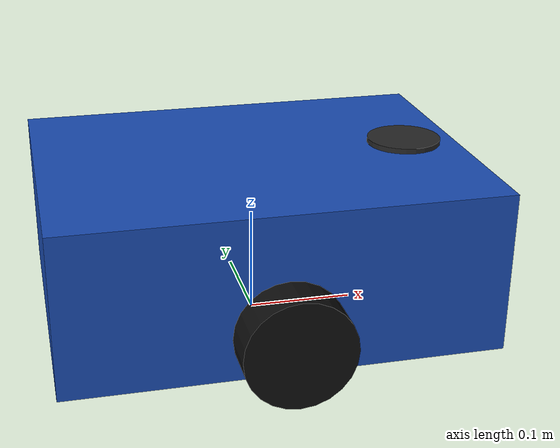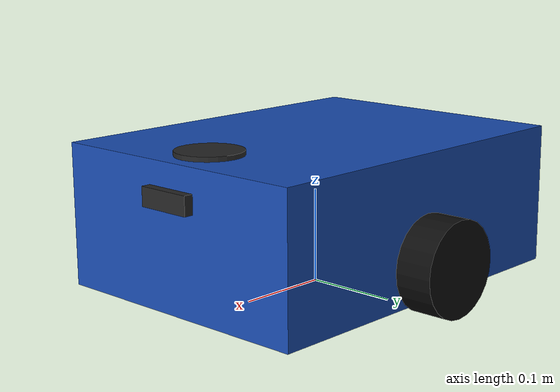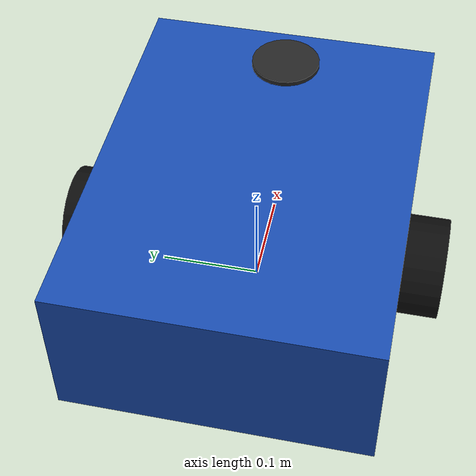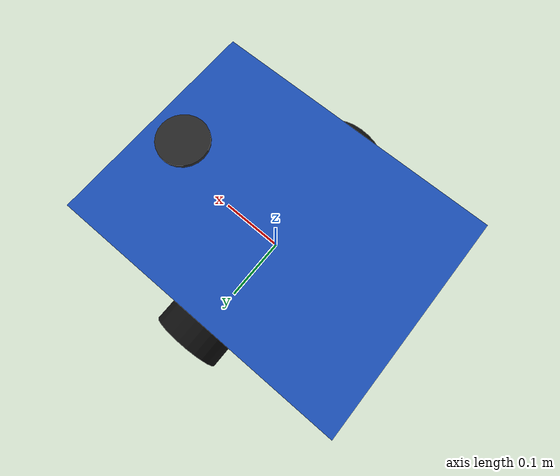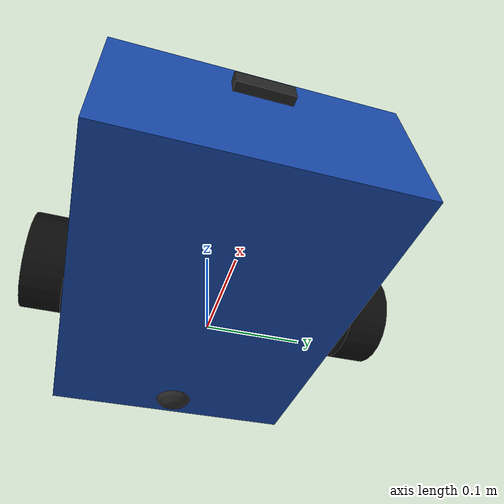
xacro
<?xml version="1.0"?>
<robot name="officebot" xmlns:xacro="http://www.ros.org/wiki/xacro">

  <xacro:include filename="$(find officebot_description)/urdf/materials.xacro"/>
  <xacro:include filename="$(find officebot_description)/urdf/officebot.gazebo.xacro"/>
  <xacro:include filename="$(find officebot_description)/urdf/officebot.ros2_control.xacro"/>

  <!-- ===================== PARAMETRY GEOMETRII ===================== -->
  <xacro:property name="base_length" value="0.40"/>
  <xacro:property name="base_width" value="0.30"/>
  <xacro:property name="base_height" value="0.15"/>
  <xacro:property name="base_mass" value="8.0"/>

  <xacro:property name="wheel_radius" value="0.05"/>
  <xacro:property name="wheel_width" value="0.04"/>
  <xacro:property name="wheel_mass" value="0.5"/>
  <xacro:property name="wheel_separation" value="0.34"/>
  <xacro:property name="wheel_x_offset" value="0.0"/>

  <xacro:property name="caster_radius" value="0.03"/>

  <!-- ===================== BASE FOOTPRINT / BASE LINK ===================== -->
  <link name="base_footprint"/>

  <joint name="base_footprint_joint" type="fixed">
    <parent link="base_footprint"/>
    <child link="base_link"/>
    <origin xyz="0 0 ${wheel_radius}" rpy="0 0 0"/>
  </joint>

  <link name="base_link">
    <visual>
      <origin xyz="0 0 0.035" rpy="0 0 0"/>
      <geometry>
        <box size="${base_length} ${base_width} ${base_height}"/>
      </geometry>
      <material name="office_blue"/>
    </visual>
    <collision>
      <origin xyz="0 0 0.035" rpy="0 0 0"/>
      <geometry>
        <box size="${base_length} ${base_width} ${base_height}"/>
      </geometry>
    </collision>
    <inertial>
      <mass value="${base_mass}"/>
      <inertia
        ixx="${base_mass/12.0 * (base_width*base_width + base_height*base_height)}" ixy="0" ixz="0"
        iyy="${base_mass/12.0 * (base_length*base_length + base_height*base_height)}" iyz="0"
        izz="${base_mass/12.0 * (base_length*base_length + base_width*base_width)}"/>
    </inertial>
  </link>

  <!-- ===================== MAKRO: KOŁO ===================== -->
  <xacro:macro name="wheel_link" params="prefix">
    <link name="${prefix}_wheel_link">
      <visual>
        <origin xyz="0 0 0" rpy="1.5708 0 0"/>
        <geometry>
          <cylinder radius="${wheel_radius}" length="${wheel_width}"/>
        </geometry>
        <material name="wheel_black"/>
      </visual>
      <collision>
        <origin xyz="0 0 0" rpy="1.5708 0 0"/>
        <geometry>
          <cylinder radius="${wheel_radius}" length="${wheel_width}"/>
        </geometry>
      </collision>
      <inertial>
        <mass value="${wheel_mass}"/>
        <inertia
          ixx="${wheel_mass/12.0 * (3*wheel_radius*wheel_radius + wheel_width*wheel_width)}" ixy="0" ixz="0"
          iyy="${wheel_mass/12.0 * (3*wheel_radius*wheel_radius + wheel_width*wheel_width)}" iyz="0"
          izz="${wheel_mass/2.0 * wheel_radius*wheel_radius}"/>
      </inertial>
    </link>
  </xacro:macro>

  <xacro:wheel_link prefix="left"/>
  <xacro:wheel_link prefix="right"/>

  <joint name="left_wheel_joint" type="continuous">
    <parent link="base_link"/>
    <child link="left_wheel_link"/>
    <origin xyz="${wheel_x_offset} ${wheel_separation/2.0} 0" rpy="0 0 0"/>
    <axis xyz="0 1 0"/>
  </joint>

  <joint name="right_wheel_joint" type="continuous">
    <parent link="base_link"/>
    <child link="right_wheel_link"/>
    <origin xyz="${wheel_x_offset} -${wheel_separation/2.0} 0" rpy="0 0 0"/>
    <axis xyz="0 1 0"/>
  </joint>

  <!-- ===================== CASTER (kółko podporowe) ===================== -->
  <link name="caster_link">
    <visual>
      <geometry><sphere radius="${caster_radius}"/></geometry>
      <material name="office_dark"/>
    </visual>
    <collision>
      <geometry><sphere radius="${caster_radius}"/></geometry>
    </collision>
    <inertial>
      <mass value="0.2"/>
      <inertia ixx="0.0001" ixy="0" ixz="0" iyy="0.0001" iyz="0" izz="0.0001"/>
    </inertial>
  </link>

  <joint name="caster_joint" type="fixed">
    <parent link="base_link"/>
    <child link="caster_link"/>
    <origin xyz="-${base_length/2.0 - caster_radius} 0 -${wheel_radius - caster_radius}" rpy="0 0 0"/>
  </joint>

  <!-- ===================== LIDAR ===================== -->
  <link name="lidar_link">
    <visual>
      <geometry><cylinder radius="0.035" length="0.04"/></geometry>
      <material name="office_dark"/>
    </visual>
    <collision>
      <geometry><cylinder radius="0.035" length="0.04"/></geometry>
    </collision>
    <inertial>
      <mass value="0.15"/>
      <inertia ixx="0.0001" ixy="0" ixz="0" iyy="0.0001" iyz="0" izz="0.0001"/>
    </inertial>
  </link>

  <joint name="lidar_joint" type="fixed">
    <parent link="base_link"/>
    <child link="lidar_link"/>
    <origin xyz="${base_length/2.0 - 0.05} 0 ${base_height/2.0 + 0.02}" rpy="0 0 0"/>
  </joint>

  <!-- ===================== KAMERA ===================== -->
  <link name="camera_link">
    <visual>
      <geometry><box size="0.02 0.06 0.02"/></geometry>
      <material name="office_dark"/>
    </visual>
    <collision>
      <geometry><box size="0.02 0.06 0.02"/></geometry>
    </collision>
    <inertial>
      <mass value="0.05"/>
      <inertia ixx="0.00001" ixy="0" ixz="0" iyy="0.00001" iyz="0" izz="0.00001"/>
    </inertial>
  </link>

  <joint name="camera_joint" type="fixed">
    <parent link="base_link"/>
    <child link="camera_link"/>
    <origin xyz="${base_length/2.0} 0 ${base_height/2.0}" rpy="0 0 0"/>
  </joint>

</robot>

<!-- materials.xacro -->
<robot xmlns:xacro="http://www.ros.org/wiki/xacro">
  <material name="office_blue">
    <color rgba="0.1 0.3 0.7 1.0"/>
  </material>
  <material name="office_dark">
    <color rgba="0.15 0.15 0.15 1.0"/>
  </material>
  <material name="wheel_black">
    <color rgba="0.05 0.05 0.05 1.0"/>
  </material>
</robot>
